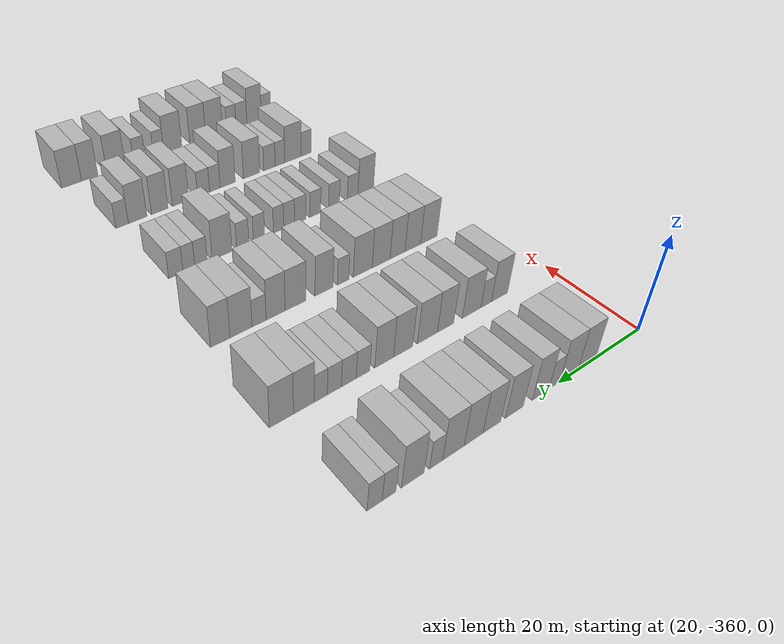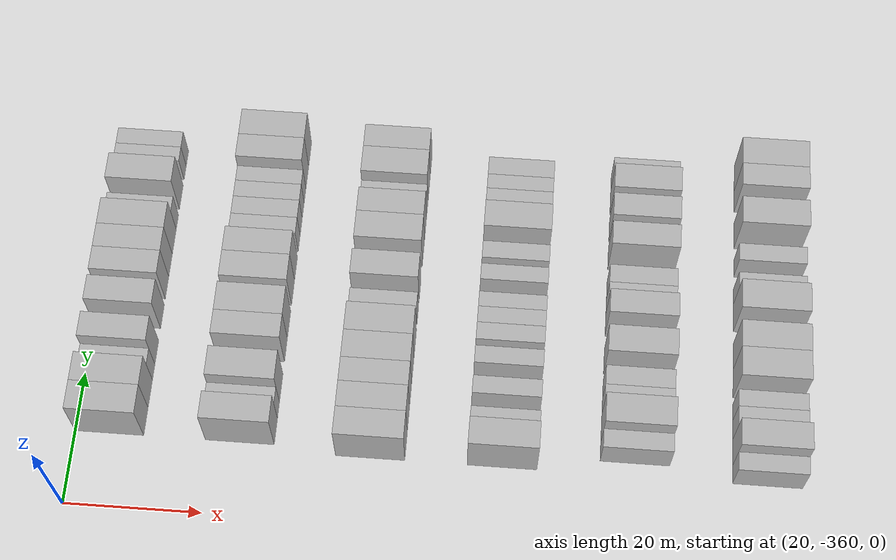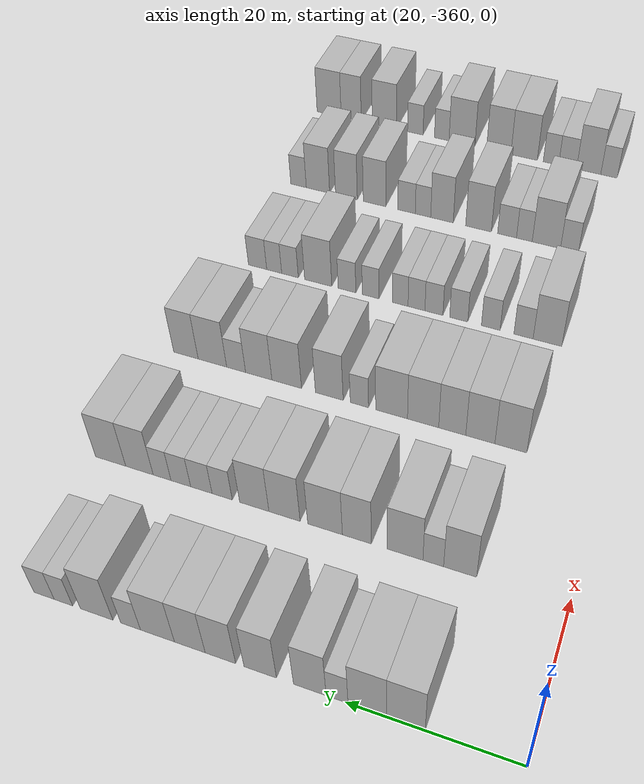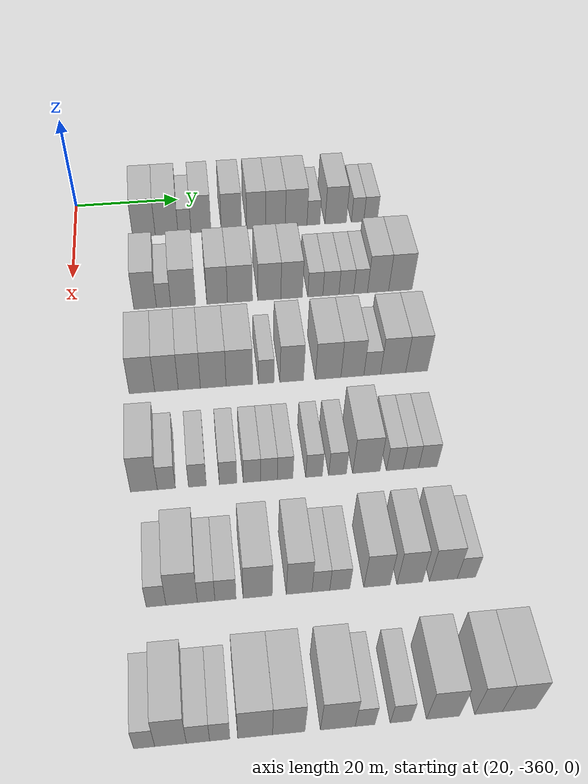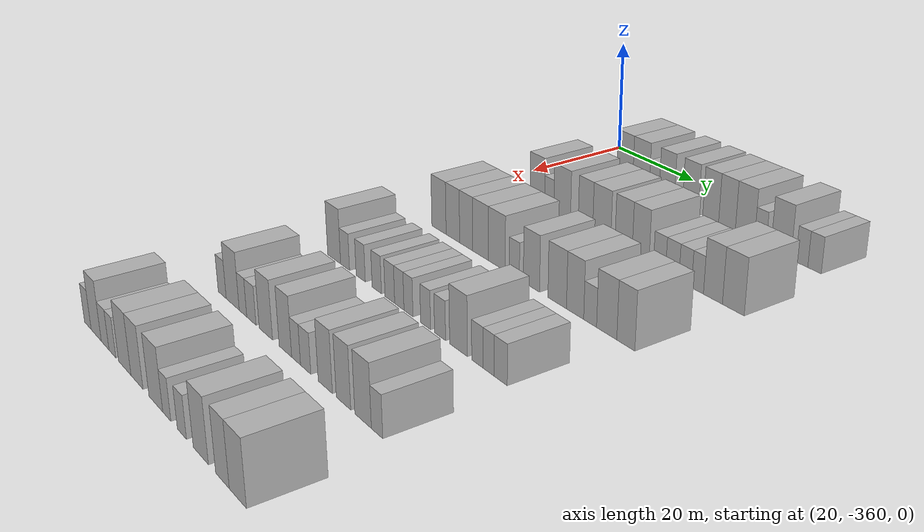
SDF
<sdf version="1.6">
 <world name="default">
  <model name="building_1">
   <static>1</static>
   <pose>25.0000 -346.8414 0 0.000000 0.000000 0.000000</pose>
   <link name="link">
    <pose>0 0 4.50 0 0 0</pose>
    <collision name="collision"><geometry><box><size>10.0000 4.3171 9.0000</size></box></geometry></collision>
    <visual name="visual">
     <cast_shadows>0</cast_shadows>
     <geometry><box><size>10.0000 4.3171 9.0000</size></box></geometry>
     <material>
      <script>
       <uri>model://HANNAS_wall/materials/scripts</uri>
       <uri>model://HANNAS_wall/materials/textures</uri>
       <name>vrc/HANNAS_wall</name>
      </script>
     </material>
    </visual>
   </link>
  </model>
  <model name="building_2">
   <static>1</static>
   <pose>25.0000 -342.5067 0 0.000000 0.000000 0.000000</pose>
   <link name="link">
    <pose>0 0 4.50 0 0 0</pose>
    <collision name="collision"><geometry><box><size>10.0000 4.3523 9.0000</size></box></geometry></collision>
    <visual name="visual">
     <cast_shadows>0</cast_shadows>
     <geometry><box><size>10.0000 4.3523 9.0000</size></box></geometry>
     <material>
      <script>
       <uri>model://HANNAS_wall/materials/scripts</uri>
       <uri>model://HANNAS_wall/materials/textures</uri>
       <name>vrc/HANNAS_wall</name>
      </script>
     </material>
    </visual>
   </link>
  </model>
  <model name="building_3">
   <static>1</static>
   <pose>25.0000 -339.0780 0 0.000000 0.000000 0.000000</pose>
   <link name="link">
    <pose>0 0 3.00 0 0 0</pose>
    <collision name="collision"><geometry><box><size>10.0000 2.5053 6.0000</size></box></geometry></collision>
    <visual name="visual">
     <cast_shadows>0</cast_shadows>
     <geometry><box><size>10.0000 2.5053 6.0000</size></box></geometry>
     <material>
      <script>
       <uri>model://HANNAS_wall/materials/scripts</uri>
       <uri>model://HANNAS_wall/materials/textures</uri>
       <name>vrc/HANNAS_wall</name>
      </script>
     </material>
    </visual>
   </link>
  </model>
  <model name="building_4">
   <static>1</static>
   <pose>25.0000 -335.9229 0 0.000000 0.000000 0.000000</pose>
   <link name="link">
    <pose>0 0 4.50 0 0 0</pose>
    <collision name="collision"><geometry><box><size>10.0000 3.8049 9.0000</size></box></geometry></collision>
    <visual name="visual">
     <cast_shadows>0</cast_shadows>
     <geometry><box><size>10.0000 3.8049 9.0000</size></box></geometry>
     <material>
      <script>
       <uri>model://HANNAS_wall/materials/scripts</uri>
       <uri>model://HANNAS_wall/materials/textures</uri>
       <name>vrc/HANNAS_wall</name>
      </script>
     </material>
    </visual>
   </link>
  </model>
  <model name="building_5">
   <static>1</static>
   <pose>25.0000 -330.0891 0 0.000000 0.000000 0.000000</pose>
   <link name="link">
    <pose>0 0 4.50 0 0 0</pose>
    <collision name="collision"><geometry><box><size>10.0000 3.8627 9.0000</size></box></geometry></collision>
    <visual name="visual">
     <cast_shadows>0</cast_shadows>
     <geometry><box><size>10.0000 3.8627 9.0000</size></box></geometry>
     <material>
      <script>
       <uri>model://HANNAS_wall/materials/scripts</uri>
       <uri>model://HANNAS_wall/materials/textures</uri>
       <name>vrc/HANNAS_wall</name>
      </script>
     </material>
    </visual>
   </link>
  </model>
  <model name="building_6">
   <static>1</static>
   <pose>25.0000 -325.3120 0 0.000000 0.000000 0.000000</pose>
   <link name="link">
    <pose>0 0 4.50 0 0 0</pose>
    <collision name="collision"><geometry><box><size>10.0000 3.6916 9.0000</size></box></geometry></collision>
    <visual name="visual">
     <cast_shadows>0</cast_shadows>
     <geometry><box><size>10.0000 3.6916 9.0000</size></box></geometry>
     <material>
      <script>
       <uri>model://HANNAS_wall/materials/scripts</uri>
       <uri>model://HANNAS_wall/materials/textures</uri>
       <name>vrc/HANNAS_wall</name>
      </script>
     </material>
    </visual>
   </link>
  </model>
  <model name="building_7">
   <static>1</static>
   <pose>25.0000 -321.5750 0 0.000000 0.000000 0.000000</pose>
   <link name="link">
    <pose>0 0 4.50 0 0 0</pose>
    <collision name="collision"><geometry><box><size>10.0000 3.7823 9.0000</size></box></geometry></collision>
    <visual name="visual">
     <cast_shadows>0</cast_shadows>
     <geometry><box><size>10.0000 3.7823 9.0000</size></box></geometry>
     <material>
      <script>
       <uri>model://HANNAS_wall/materials/scripts</uri>
       <uri>model://HANNAS_wall/materials/textures</uri>
       <name>vrc/HANNAS_wall</name>
      </script>
     </material>
    </visual>
   </link>
  </model>
  <model name="building_8">
   <static>1</static>
   <pose>25.0000 -317.5639 0 0.000000 0.000000 0.000000</pose>
   <link name="link">
    <pose>0 0 4.50 0 0 0</pose>
    <collision name="collision"><geometry><box><size>10.0000 4.2399 9.0000</size></box></geometry></collision>
    <visual name="visual">
     <cast_shadows>0</cast_shadows>
     <geometry><box><size>10.0000 4.2399 9.0000</size></box></geometry>
     <material>
      <script>
       <uri>model://HANNAS_wall/materials/scripts</uri>
       <uri>model://HANNAS_wall/materials/textures</uri>
       <name>vrc/HANNAS_wall</name>
      </script>
     </material>
    </visual>
   </link>
  </model>
  <model name="building_9">
   <static>1</static>
   <pose>25.0000 -314.1928 0 0.000000 0.000000 0.000000</pose>
   <link name="link">
    <pose>0 0 3.00 0 0 0</pose>
    <collision name="collision"><geometry><box><size>10.0000 2.5023 6.0000</size></box></geometry></collision>
    <visual name="visual">
     <cast_shadows>0</cast_shadows>
     <geometry><box><size>10.0000 2.5023 6.0000</size></box></geometry>
     <material>
      <script>
       <uri>model://HANNAS_wall/materials/scripts</uri>
       <uri>model://HANNAS_wall/materials/textures</uri>
       <name>vrc/HANNAS_wall</name>
      </script>
     </material>
    </visual>
   </link>
  </model>
  <model name="building_10">
   <static>1</static>
   <pose>25.0000 -309.8536 0 0.000000 0.000000 0.000000</pose>
   <link name="link">
    <pose>0 0 4.50 0 0 0</pose>
    <collision name="collision"><geometry><box><size>10.0000 4.1762 9.0000</size></box></geometry></collision>
    <visual name="visual">
     <cast_shadows>0</cast_shadows>
     <geometry><box><size>10.0000 4.1762 9.0000</size></box></geometry>
     <material>
      <script>
       <uri>model://HANNAS_wall/materials/scripts</uri>
       <uri>model://HANNAS_wall/materials/textures</uri>
       <name>vrc/HANNAS_wall</name>
      </script>
     </material>
    </visual>
   </link>
  </model>
  <model name="building_11">
   <static>1</static>
   <pose>25.0000 -305.5588 0 0.000000 0.000000 0.000000</pose>
   <link name="link">
    <pose>0 0 3.00 0 0 0</pose>
    <collision name="collision"><geometry><box><size>10.0000 2.4134 6.0000</size></box></geometry></collision>
    <visual name="visual">
     <cast_shadows>0</cast_shadows>
     <geometry><box><size>10.0000 2.4134 6.0000</size></box></geometry>
     <material>
      <script>
       <uri>model://HANNAS_wall/materials/scripts</uri>
       <uri>model://HANNAS_wall/materials/textures</uri>
       <name>vrc/HANNAS_wall</name>
      </script>
     </material>
    </visual>
   </link>
  </model>
  <model name="building_12">
   <static>1</static>
   <pose>25.0000 -303.0187 0 0.000000 0.000000 0.000000</pose>
   <link name="link">
    <pose>0 0 3.00 0 0 0</pose>
    <collision name="collision"><geometry><box><size>10.0000 2.6667 6.0000</size></box></geometry></collision>
    <visual name="visual">
     <cast_shadows>0</cast_shadows>
     <geometry><box><size>10.0000 2.6667 6.0000</size></box></geometry>
     <material>
      <script>
       <uri>model://HANNAS_wall/materials/scripts</uri>
       <uri>model://HANNAS_wall/materials/textures</uri>
       <name>vrc/HANNAS_wall</name>
      </script>
     </material>
    </visual>
   </link>
  </model>
  <model name="building_168">
   <static>1</static>
   <pose>44.0000 -346.9858 0 0.000000 0.000000 0.000000</pose>
   <link name="link">
    <pose>0 0 4.50 0 0 0</pose>
    <collision name="collision"><geometry><box><size>10.0000 4.0285 9.0000</size></box></geometry></collision>
    <visual name="visual">
     <cast_shadows>0</cast_shadows>
     <geometry><box><size>10.0000 4.0285 9.0000</size></box></geometry>
     <material>
      <script>
       <uri>model://HANNAS_wall/materials/scripts</uri>
       <uri>model://HANNAS_wall/materials/textures</uri>
       <name>vrc/HANNAS_wall</name>
      </script>
     </material>
    </visual>
   </link>
  </model>
  <model name="building_169">
   <static>1</static>
   <pose>44.0000 -343.7005 0 0.000000 0.000000 0.000000</pose>
   <link name="link">
    <pose>0 0 3.00 0 0 0</pose>
    <collision name="collision"><geometry><box><size>10.0000 2.5421 6.0000</size></box></geometry></collision>
    <visual name="visual">
     <cast_shadows>0</cast_shadows>
     <geometry><box><size>10.0000 2.5421 6.0000</size></box></geometry>
     <material>
      <script>
       <uri>model://HANNAS_wall/materials/scripts</uri>
       <uri>model://HANNAS_wall/materials/textures</uri>
       <name>vrc/HANNAS_wall</name>
      </script>
     </material>
    </visual>
   </link>
  </model>
  <model name="building_170">
   <static>1</static>
   <pose>44.0000 -340.2068 0 0.000000 0.000000 0.000000</pose>
   <link name="link">
    <pose>0 0 4.50 0 0 0</pose>
    <collision name="collision"><geometry><box><size>10.0000 4.4453 9.0000</size></box></geometry></collision>
    <visual name="visual">
     <cast_shadows>0</cast_shadows>
     <geometry><box><size>10.0000 4.4453 9.0000</size></box></geometry>
     <material>
      <script>
       <uri>model://HANNAS_wall/materials/scripts</uri>
       <uri>model://HANNAS_wall/materials/textures</uri>
       <name>vrc/HANNAS_wall</name>
      </script>
     </material>
    </visual>
   </link>
  </model>
  <model name="building_171">
   <static>1</static>
   <pose>44.0000 -334.1360 0 0.000000 0.000000 0.000000</pose>
   <link name="link">
    <pose>0 0 4.50 0 0 0</pose>
    <collision name="collision"><geometry><box><size>10.0000 3.6963 9.0000</size></box></geometry></collision>
    <visual name="visual">
     <cast_shadows>0</cast_shadows>
     <geometry><box><size>10.0000 3.6963 9.0000</size></box></geometry>
     <material>
      <script>
       <uri>model://HANNAS_wall/materials/scripts</uri>
       <uri>model://HANNAS_wall/materials/textures</uri>
       <name>vrc/HANNAS_wall</name>
      </script>
     </material>
    </visual>
   </link>
  </model>
  <model name="building_172">
   <static>1</static>
   <pose>44.0000 -330.0471 0 0.000000 0.000000 0.000000</pose>
   <link name="link">
    <pose>0 0 4.50 0 0 0</pose>
    <collision name="collision"><geometry><box><size>10.0000 4.4815 9.0000</size></box></geometry></collision>
    <visual name="visual">
     <cast_shadows>0</cast_shadows>
     <geometry><box><size>10.0000 4.4815 9.0000</size></box></geometry>
     <material>
      <script>
       <uri>model://HANNAS_wall/materials/scripts</uri>
       <uri>model://HANNAS_wall/materials/textures</uri>
       <name>vrc/HANNAS_wall</name>
      </script>
     </material>
    </visual>
   </link>
  </model>
  <model name="building_173">
   <static>1</static>
   <pose>44.0000 -324.7523 0 0.000000 0.000000 0.000000</pose>
   <link name="link">
    <pose>0 0 4.50 0 0 0</pose>
    <collision name="collision"><geometry><box><size>10.0000 4.1080 9.0000</size></box></geometry></collision>
    <visual name="visual">
     <cast_shadows>0</cast_shadows>
     <geometry><box><size>10.0000 4.1080 9.0000</size></box></geometry>
     <material>
      <script>
       <uri>model://HANNAS_wall/materials/scripts</uri>
       <uri>model://HANNAS_wall/materials/textures</uri>
       <name>vrc/HANNAS_wall</name>
      </script>
     </material>
    </visual>
   </link>
  </model>
  <model name="building_174">
   <static>1</static>
   <pose>44.0000 -320.7462 0 0.000000 0.000000 0.000000</pose>
   <link name="link">
    <pose>0 0 4.50 0 0 0</pose>
    <collision name="collision"><geometry><box><size>10.0000 3.9042 9.0000</size></box></geometry></collision>
    <visual name="visual">
     <cast_shadows>0</cast_shadows>
     <geometry><box><size>10.0000 3.9042 9.0000</size></box></geometry>
     <material>
      <script>
       <uri>model://HANNAS_wall/materials/scripts</uri>
       <uri>model://HANNAS_wall/materials/textures</uri>
       <name>vrc/HANNAS_wall</name>
      </script>
     </material>
    </visual>
   </link>
  </model>
  <model name="building_175">
   <static>1</static>
   <pose>44.0000 -316.4257 0 0.000000 0.000000 0.000000</pose>
   <link name="link">
    <pose>0 0 3.00 0 0 0</pose>
    <collision name="collision"><geometry><box><size>10.0000 2.7368 6.0000</size></box></geometry></collision>
    <visual name="visual">
     <cast_shadows>0</cast_shadows>
     <geometry><box><size>10.0000 2.7368 6.0000</size></box></geometry>
     <material>
      <script>
       <uri>model://HANNAS_wall/materials/scripts</uri>
       <uri>model://HANNAS_wall/materials/textures</uri>
       <name>vrc/HANNAS_wall</name>
      </script>
     </material>
    </visual>
   </link>
  </model>
  <model name="building_176">
   <static>1</static>
   <pose>44.0000 -313.5941 0 0.000000 0.000000 0.000000</pose>
   <link name="link">
    <pose>0 0 3.00 0 0 0</pose>
    <collision name="collision"><geometry><box><size>10.0000 2.9264 6.0000</size></box></geometry></collision>
    <visual name="visual">
     <cast_shadows>0</cast_shadows>
     <geometry><box><size>10.0000 2.9264 6.0000</size></box></geometry>
     <material>
      <script>
       <uri>model://HANNAS_wall/materials/scripts</uri>
       <uri>model://HANNAS_wall/materials/textures</uri>
       <name>vrc/HANNAS_wall</name>
      </script>
     </material>
    </visual>
   </link>
  </model>
  <model name="building_177">
   <static>1</static>
   <pose>44.0000 -310.7716 0 0.000000 0.000000 0.000000</pose>
   <link name="link">
    <pose>0 0 3.00 0 0 0</pose>
    <collision name="collision"><geometry><box><size>10.0000 2.7185 6.0000</size></box></geometry></collision>
    <visual name="visual">
     <cast_shadows>0</cast_shadows>
     <geometry><box><size>10.0000 2.7185 6.0000</size></box></geometry>
     <material>
      <script>
       <uri>model://HANNAS_wall/materials/scripts</uri>
       <uri>model://HANNAS_wall/materials/textures</uri>
       <name>vrc/HANNAS_wall</name>
      </script>
     </material>
    </visual>
   </link>
  </model>
  <model name="building_178">
   <static>1</static>
   <pose>44.0000 -308.1678 0 0.000000 0.000000 0.000000</pose>
   <link name="link">
    <pose>0 0 3.00 0 0 0</pose>
    <collision name="collision"><geometry><box><size>10.0000 2.4892 6.0000</size></box></geometry></collision>
    <visual name="visual">
     <cast_shadows>0</cast_shadows>
     <geometry><box><size>10.0000 2.4892 6.0000</size></box></geometry>
     <material>
      <script>
       <uri>model://HANNAS_wall/materials/scripts</uri>
       <uri>model://HANNAS_wall/materials/textures</uri>
       <name>vrc/HANNAS_wall</name>
      </script>
     </material>
    </visual>
   </link>
  </model>
  <model name="building_179">
   <static>1</static>
   <pose>44.0000 -304.9885 0 0.000000 0.000000 0.000000</pose>
   <link name="link">
    <pose>0 0 4.50 0 0 0</pose>
    <collision name="collision"><geometry><box><size>10.0000 3.8693 9.0000</size></box></geometry></collision>
    <visual name="visual">
     <cast_shadows>0</cast_shadows>
     <geometry><box><size>10.0000 3.8693 9.0000</size></box></geometry>
     <material>
      <script>
       <uri>model://HANNAS_wall/materials/scripts</uri>
       <uri>model://HANNAS_wall/materials/textures</uri>
       <name>vrc/HANNAS_wall</name>
      </script>
     </material>
    </visual>
   </link>
  </model>
  <model name="building_180">
   <static>1</static>
   <pose>44.0000 -300.8973 0 0.000000 0.000000 0.000000</pose>
   <link name="link">
    <pose>0 0 4.50 0 0 0</pose>
    <collision name="collision"><geometry><box><size>10.0000 4.3132 9.0000</size></box></geometry></collision>
    <visual name="visual">
     <cast_shadows>0</cast_shadows>
     <geometry><box><size>10.0000 4.3132 9.0000</size></box></geometry>
     <material>
      <script>
       <uri>model://HANNAS_wall/materials/scripts</uri>
       <uri>model://HANNAS_wall/materials/textures</uri>
       <name>vrc/HANNAS_wall</name>
      </script>
     </material>
    </visual>
   </link>
  </model>
  <model name="building_346">
   <static>1</static>
   <pose>63.0000 -347.8980 0 0.000000 0.000000 0.000000</pose>
   <link name="link">
    <pose>0 0 4.50 0 0 0</pose>
    <collision name="collision"><geometry><box><size>10.0000 4.2040 9.0000</size></box></geometry></collision>
    <visual name="visual">
     <cast_shadows>0</cast_shadows>
     <geometry><box><size>10.0000 4.2040 9.0000</size></box></geometry>
     <material>
      <script>
       <uri>model://HANNAS_wall/materials/scripts</uri>
       <uri>model://HANNAS_wall/materials/textures</uri>
       <name>vrc/HANNAS_wall</name>
      </script>
     </material>
    </visual>
   </link>
  </model>
  <model name="building_347">
   <static>1</static>
   <pose>63.0000 -343.8530 0 0.000000 0.000000 0.000000</pose>
   <link name="link">
    <pose>0 0 4.50 0 0 0</pose>
    <collision name="collision"><geometry><box><size>10.0000 3.8861 9.0000</size></box></geometry></collision>
    <visual name="visual">
     <cast_shadows>0</cast_shadows>
     <geometry><box><size>10.0000 3.8861 9.0000</size></box></geometry>
     <material>
      <script>
       <uri>model://HANNAS_wall/materials/scripts</uri>
       <uri>model://HANNAS_wall/materials/textures</uri>
       <name>vrc/HANNAS_wall</name>
      </script>
     </material>
    </visual>
   </link>
  </model>
  <model name="building_348">
   <static>1</static>
   <pose>63.0000 -340.0815 0 0.000000 0.000000 0.000000</pose>
   <link name="link">
    <pose>0 0 4.50 0 0 0</pose>
    <collision name="collision"><geometry><box><size>10.0000 3.6570 9.0000</size></box></geometry></collision>
    <visual name="visual">
     <cast_shadows>0</cast_shadows>
     <geometry><box><size>10.0000 3.6570 9.0000</size></box></geometry>
     <material>
      <script>
       <uri>model://HANNAS_wall/materials/scripts</uri>
       <uri>model://HANNAS_wall/materials/textures</uri>
       <name>vrc/HANNAS_wall</name>
      </script>
     </material>
    </visual>
   </link>
  </model>
  <model name="building_349">
   <static>1</static>
   <pose>63.0000 -336.1167 0 0.000000 0.000000 0.000000</pose>
   <link name="link">
    <pose>0 0 4.50 0 0 0</pose>
    <collision name="collision"><geometry><box><size>10.0000 4.2725 9.0000</size></box></geometry></collision>
    <visual name="visual">
     <cast_shadows>0</cast_shadows>
     <geometry><box><size>10.0000 4.2725 9.0000</size></box></geometry>
     <material>
      <script>
       <uri>model://HANNAS_wall/materials/scripts</uri>
       <uri>model://HANNAS_wall/materials/textures</uri>
       <name>vrc/HANNAS_wall</name>
      </script>
     </material>
    </visual>
   </link>
  </model>
  <model name="building_350">
   <static>1</static>
   <pose>63.0000 -331.7739 0 0.000000 0.000000 0.000000</pose>
   <link name="link">
    <pose>0 0 4.50 0 0 0</pose>
    <collision name="collision"><geometry><box><size>10.0000 4.4131 9.0000</size></box></geometry></collision>
    <visual name="visual">
     <cast_shadows>0</cast_shadows>
     <geometry><box><size>10.0000 4.4131 9.0000</size></box></geometry>
     <material>
      <script>
       <uri>model://HANNAS_wall/materials/scripts</uri>
       <uri>model://HANNAS_wall/materials/textures</uri>
       <name>vrc/HANNAS_wall</name>
      </script>
     </material>
    </visual>
   </link>
  </model>
  <model name="building_351">
   <static>1</static>
   <pose>63.0000 -327.2815 0 0.000000 0.000000 0.000000</pose>
   <link name="link">
    <pose>0 0 3.00 0 0 0</pose>
    <collision name="collision"><geometry><box><size>10.0000 2.5716 6.0000</size></box></geometry></collision>
    <visual name="visual">
     <cast_shadows>0</cast_shadows>
     <geometry><box><size>10.0000 2.5716 6.0000</size></box></geometry>
     <material>
      <script>
       <uri>model://HANNAS_wall/materials/scripts</uri>
       <uri>model://HANNAS_wall/materials/textures</uri>
       <name>vrc/HANNAS_wall</name>
      </script>
     </material>
    </visual>
   </link>
  </model>
  <model name="building_352">
   <static>1</static>
   <pose>63.0000 -323.0118 0 0.000000 0.000000 0.000000</pose>
   <link name="link">
    <pose>0 0 4.50 0 0 0</pose>
    <collision name="collision"><geometry><box><size>10.0000 3.9677 9.0000</size></box></geometry></collision>
    <visual name="visual">
     <cast_shadows>0</cast_shadows>
     <geometry><box><size>10.0000 3.9677 9.0000</size></box></geometry>
     <material>
      <script>
       <uri>model://HANNAS_wall/materials/scripts</uri>
       <uri>model://HANNAS_wall/materials/textures</uri>
       <name>vrc/HANNAS_wall</name>
      </script>
     </material>
    </visual>
   </link>
  </model>
  <model name="building_353">
   <static>1</static>
   <pose>63.0000 -316.8714 0 0.000000 0.000000 0.000000</pose>
   <link name="link">
    <pose>0 0 4.50 0 0 0</pose>
    <collision name="collision"><geometry><box><size>10.0000 4.3132 9.0000</size></box></geometry></collision>
    <visual name="visual">
     <cast_shadows>0</cast_shadows>
     <geometry><box><size>10.0000 4.3132 9.0000</size></box></geometry>
     <material>
      <script>
       <uri>model://HANNAS_wall/materials/scripts</uri>
       <uri>model://HANNAS_wall/materials/textures</uri>
       <name>vrc/HANNAS_wall</name>
      </script>
     </material>
    </visual>
   </link>
  </model>
  <model name="building_354">
   <static>1</static>
   <pose>63.0000 -312.7726 0 0.000000 0.000000 0.000000</pose>
   <link name="link">
    <pose>0 0 4.50 0 0 0</pose>
    <collision name="collision"><geometry><box><size>10.0000 3.8843 9.0000</size></box></geometry></collision>
    <visual name="visual">
     <cast_shadows>0</cast_shadows>
     <geometry><box><size>10.0000 3.8843 9.0000</size></box></geometry>
     <material>
      <script>
       <uri>model://HANNAS_wall/materials/scripts</uri>
       <uri>model://HANNAS_wall/materials/textures</uri>
       <name>vrc/HANNAS_wall</name>
      </script>
     </material>
    </visual>
   </link>
  </model>
  <model name="building_355">
   <static>1</static>
   <pose>63.0000 -309.4190 0 0.000000 0.000000 0.000000</pose>
   <link name="link">
    <pose>0 0 3.00 0 0 0</pose>
    <collision name="collision"><geometry><box><size>10.0000 2.8229 6.0000</size></box></geometry></collision>
    <visual name="visual">
     <cast_shadows>0</cast_shadows>
     <geometry><box><size>10.0000 2.8229 6.0000</size></box></geometry>
     <material>
      <script>
       <uri>model://HANNAS_wall/materials/scripts</uri>
       <uri>model://HANNAS_wall/materials/textures</uri>
       <name>vrc/HANNAS_wall</name>
      </script>
     </material>
    </visual>
   </link>
  </model>
  <model name="building_356">
   <static>1</static>
   <pose>63.0000 -305.8580 0 0.000000 0.000000 0.000000</pose>
   <link name="link">
    <pose>0 0 4.50 0 0 0</pose>
    <collision name="collision"><geometry><box><size>10.0000 4.2990 9.0000</size></box></geometry></collision>
    <visual name="visual">
     <cast_shadows>0</cast_shadows>
     <geometry><box><size>10.0000 4.2990 9.0000</size></box></geometry>
     <material>
      <script>
       <uri>model://HANNAS_wall/materials/scripts</uri>
       <uri>model://HANNAS_wall/materials/textures</uri>
       <name>vrc/HANNAS_wall</name>
      </script>
     </material>
    </visual>
   </link>
  </model>
  <model name="building_357">
   <static>1</static>
   <pose>63.0000 -301.8482 0 0.000000 0.000000 0.000000</pose>
   <link name="link">
    <pose>0 0 4.50 0 0 0</pose>
    <collision name="collision"><geometry><box><size>10.0000 3.7205 9.0000</size></box></geometry></collision>
    <visual name="visual">
     <cast_shadows>0</cast_shadows>
     <geometry><box><size>10.0000 3.7205 9.0000</size></box></geometry>
     <material>
      <script>
       <uri>model://HANNAS_wall/materials/scripts</uri>
       <uri>model://HANNAS_wall/materials/textures</uri>
       <name>vrc/HANNAS_wall</name>
      </script>
     </material>
    </visual>
   </link>
  </model>
  <model name="building_506">
   <static>1</static>
   <pose>82.0000 -347.9588 0 0.000000 0.000000 0.000000</pose>
   <link name="link">
    <pose>0 0 4.50 0 0 0</pose>
    <collision name="collision"><geometry><box><size>10.0000 4.0824 9.0000</size></box></geometry></collision>
    <visual name="visual">
     <cast_shadows>0</cast_shadows>
     <geometry><box><size>10.0000 4.0824 9.0000</size></box></geometry>
     <material>
      <script>
       <uri>model://HANNAS_wall/materials/scripts</uri>
       <uri>model://HANNAS_wall/materials/textures</uri>
       <name>vrc/HANNAS_wall</name>
      </script>
     </material>
    </visual>
   </link>
  </model>
  <model name="building_507">
   <static>1</static>
   <pose>82.0000 -344.5415 0 0.000000 0.000000 0.000000</pose>
   <link name="link">
    <pose>0 0 3.00 0 0 0</pose>
    <collision name="collision"><geometry><box><size>10.0000 2.7523 6.0000</size></box></geometry></collision>
    <visual name="visual">
     <cast_shadows>0</cast_shadows>
     <geometry><box><size>10.0000 2.7523 6.0000</size></box></geometry>
     <material>
      <script>
       <uri>model://HANNAS_wall/materials/scripts</uri>
       <uri>model://HANNAS_wall/materials/textures</uri>
       <name>vrc/HANNAS_wall</name>
      </script>
     </material>
    </visual>
   </link>
  </model>
  <model name="building_508">
   <static>1</static>
   <pose>82.0000 -339.8055 0 0.000000 0.000000 0.000000</pose>
   <link name="link">
    <pose>0 0 3.00 0 0 0</pose>
    <collision name="collision"><geometry><box><size>10.0000 2.7197 6.0000</size></box></geometry></collision>
    <visual name="visual">
     <cast_shadows>0</cast_shadows>
     <geometry><box><size>10.0000 2.7197 6.0000</size></box></geometry>
     <material>
      <script>
       <uri>model://HANNAS_wall/materials/scripts</uri>
       <uri>model://HANNAS_wall/materials/textures</uri>
       <name>vrc/HANNAS_wall</name>
      </script>
     </material>
    </visual>
   </link>
  </model>
  <model name="building_509">
   <static>1</static>
   <pose>82.0000 -335.1056 0 0.000000 0.000000 0.000000</pose>
   <link name="link">
    <pose>0 0 3.00 0 0 0</pose>
    <collision name="collision"><geometry><box><size>10.0000 2.6802 6.0000</size></box></geometry></collision>
    <visual name="visual">
     <cast_shadows>0</cast_shadows>
     <geometry><box><size>10.0000 2.6802 6.0000</size></box></geometry>
     <material>
      <script>
       <uri>model://HANNAS_wall/materials/scripts</uri>
       <uri>model://HANNAS_wall/materials/textures</uri>
       <name>vrc/HANNAS_wall</name>
      </script>
     </material>
    </visual>
   </link>
  </model>
  <model name="building_510">
   <static>1</static>
   <pose>82.0000 -331.4218 0 0.000000 0.000000 0.000000</pose>
   <link name="link">
    <pose>0 0 3.00 0 0 0</pose>
    <collision name="collision"><geometry><box><size>10.0000 2.6874 6.0000</size></box></geometry></collision>
    <visual name="visual">
     <cast_shadows>0</cast_shadows>
     <geometry><box><size>10.0000 2.6874 6.0000</size></box></geometry>
     <material>
      <script>
       <uri>model://HANNAS_wall/materials/scripts</uri>
       <uri>model://HANNAS_wall/materials/textures</uri>
       <name>vrc/HANNAS_wall</name>
      </script>
     </material>
    </visual>
   </link>
  </model>
  <model name="building_511">
   <static>1</static>
   <pose>82.0000 -328.8075 0 0.000000 0.000000 0.000000</pose>
   <link name="link">
    <pose>0 0 3.00 0 0 0</pose>
    <collision name="collision"><geometry><box><size>10.0000 2.5410 6.0000</size></box></geometry></collision>
    <visual name="visual">
     <cast_shadows>0</cast_shadows>
     <geometry><box><size>10.0000 2.5410 6.0000</size></box></geometry>
     <material>
      <script>
       <uri>model://HANNAS_wall/materials/scripts</uri>
       <uri>model://HANNAS_wall/materials/textures</uri>
       <name>vrc/HANNAS_wall</name>
      </script>
     </material>
    </visual>
   </link>
  </model>
  <model name="building_512">
   <static>1</static>
   <pose>82.0000 -326.3339 0 0.000000 0.000000 0.000000</pose>
   <link name="link">
    <pose>0 0 3.00 0 0 0</pose>
    <collision name="collision"><geometry><box><size>10.0000 2.4064 6.0000</size></box></geometry></collision>
    <visual name="visual">
     <cast_shadows>0</cast_shadows>
     <geometry><box><size>10.0000 2.4064 6.0000</size></box></geometry>
     <material>
      <script>
       <uri>model://HANNAS_wall/materials/scripts</uri>
       <uri>model://HANNAS_wall/materials/textures</uri>
       <name>vrc/HANNAS_wall</name>
      </script>
     </material>
    </visual>
   </link>
  </model>
  <model name="building_513">
   <static>1</static>
   <pose>82.0000 -321.8482 0 0.000000 0.000000 0.000000</pose>
   <link name="link">
    <pose>0 0 3.00 0 0 0</pose>
    <collision name="collision"><geometry><box><size>10.0000 2.5649 6.0000</size></box></geometry></collision>
    <visual name="visual">
     <cast_shadows>0</cast_shadows>
     <geometry><box><size>10.0000 2.5649 6.0000</size></box></geometry>
     <material>
      <script>
       <uri>model://HANNAS_wall/materials/scripts</uri>
       <uri>model://HANNAS_wall/materials/textures</uri>
       <name>vrc/HANNAS_wall</name>
      </script>
     </material>
    </visual>
   </link>
  </model>
  <model name="building_514">
   <static>1</static>
   <pose>82.0000 -318.1904 0 0.000000 0.000000 0.000000</pose>
   <link name="link">
    <pose>0 0 3.00 0 0 0</pose>
    <collision name="collision"><geometry><box><size>10.0000 2.7507 6.0000</size></box></geometry></collision>
    <visual name="visual">
     <cast_shadows>0</cast_shadows>
     <geometry><box><size>10.0000 2.7507 6.0000</size></box></geometry>
     <material>
      <script>
       <uri>model://HANNAS_wall/materials/scripts</uri>
       <uri>model://HANNAS_wall/materials/textures</uri>
       <name>vrc/HANNAS_wall</name>
      </script>
     </material>
    </visual>
   </link>
  </model>
  <model name="building_515">
   <static>1</static>
   <pose>82.0000 -313.6789 0 0.000000 0.000000 0.000000</pose>
   <link name="link">
    <pose>0 0 4.50 0 0 0</pose>
    <collision name="collision"><geometry><box><size>10.0000 4.2724 9.0000</size></box></geometry></collision>
    <visual name="visual">
     <cast_shadows>0</cast_shadows>
     <geometry><box><size>10.0000 4.2724 9.0000</size></box></geometry>
     <material>
      <script>
       <uri>model://HANNAS_wall/materials/scripts</uri>
       <uri>model://HANNAS_wall/materials/textures</uri>
       <name>vrc/HANNAS_wall</name>
      </script>
     </material>
    </visual>
   </link>
  </model>
  <model name="building_516">
   <static>1</static>
   <pose>82.0000 -309.2199 0 0.000000 0.000000 0.000000</pose>
   <link name="link">
    <pose>0 0 3.00 0 0 0</pose>
    <collision name="collision"><geometry><box><size>10.0000 2.6455 6.0000</size></box></geometry></collision>
    <visual name="visual">
     <cast_shadows>0</cast_shadows>
     <geometry><box><size>10.0000 2.6455 6.0000</size></box></geometry>
     <material>
      <script>
       <uri>model://HANNAS_wall/materials/scripts</uri>
       <uri>model://HANNAS_wall/materials/textures</uri>
       <name>vrc/HANNAS_wall</name>
      </script>
     </material>
    </visual>
   </link>
  </model>
  <model name="building_517">
   <static>1</static>
   <pose>82.0000 -306.6944 0 0.000000 0.000000 0.000000</pose>
   <link name="link">
    <pose>0 0 3.00 0 0 0</pose>
    <collision name="collision"><geometry><box><size>10.0000 2.4055 6.0000</size></box></geometry></collision>
    <visual name="visual">
     <cast_shadows>0</cast_shadows>
     <geometry><box><size>10.0000 2.4055 6.0000</size></box></geometry>
     <material>
      <script>
       <uri>model://HANNAS_wall/materials/scripts</uri>
       <uri>model://HANNAS_wall/materials/textures</uri>
       <name>vrc/HANNAS_wall</name>
      </script>
     </material>
    </visual>
   </link>
  </model>
  <model name="building_518">
   <static>1</static>
   <pose>82.0000 -304.0193 0 0.000000 0.000000 0.000000</pose>
   <link name="link">
    <pose>0 0 3.00 0 0 0</pose>
    <collision name="collision"><geometry><box><size>10.0000 2.9448 6.0000</size></box></geometry></collision>
    <visual name="visual">
     <cast_shadows>0</cast_shadows>
     <geometry><box><size>10.0000 2.9448 6.0000</size></box></geometry>
     <material>
      <script>
       <uri>model://HANNAS_wall/materials/scripts</uri>
       <uri>model://HANNAS_wall/materials/textures</uri>
       <name>vrc/HANNAS_wall</name>
      </script>
     </material>
    </visual>
   </link>
  </model>
  <model name="building_677">
   <static>1</static>
   <pose>101.0000 -346.6290 0 0.000000 0.000000 0.000000</pose>
   <link name="link">
    <pose>0 0 3.00 0 0 0</pose>
    <collision name="collision"><geometry><box><size>10.0000 2.7420 6.0000</size></box></geometry></collision>
    <visual name="visual">
     <cast_shadows>0</cast_shadows>
     <geometry><box><size>10.0000 2.7420 6.0000</size></box></geometry>
     <material>
      <script>
       <uri>model://HANNAS_wall/materials/scripts</uri>
       <uri>model://HANNAS_wall/materials/textures</uri>
       <name>vrc/HANNAS_wall</name>
      </script>
     </material>
    </visual>
   </link>
  </model>
  <model name="building_678">
   <static>1</static>
   <pose>101.0000 -343.0678 0 0.000000 0.000000 0.000000</pose>
   <link name="link">
    <pose>0 0 4.50 0 0 0</pose>
    <collision name="collision"><geometry><box><size>10.0000 4.3805 9.0000</size></box></geometry></collision>
    <visual name="visual">
     <cast_shadows>0</cast_shadows>
     <geometry><box><size>10.0000 4.3805 9.0000</size></box></geometry>
     <material>
      <script>
       <uri>model://HANNAS_wall/materials/scripts</uri>
       <uri>model://HANNAS_wall/materials/textures</uri>
       <name>vrc/HANNAS_wall</name>
      </script>
     </material>
    </visual>
   </link>
  </model>
  <model name="building_679">
   <static>1</static>
   <pose>101.0000 -339.6478 0 0.000000 0.000000 0.000000</pose>
   <link name="link">
    <pose>0 0 3.00 0 0 0</pose>
    <collision name="collision"><geometry><box><size>10.0000 2.4593 6.0000</size></box></geometry></collision>
    <visual name="visual">
     <cast_shadows>0</cast_shadows>
     <geometry><box><size>10.0000 2.4593 6.0000</size></box></geometry>
     <material>
      <script>
       <uri>model://HANNAS_wall/materials/scripts</uri>
       <uri>model://HANNAS_wall/materials/textures</uri>
       <name>vrc/HANNAS_wall</name>
      </script>
     </material>
    </visual>
   </link>
  </model>
  <model name="building_680">
   <static>1</static>
   <pose>101.0000 -336.9368 0 0.000000 0.000000 0.000000</pose>
   <link name="link">
    <pose>0 0 3.00 0 0 0</pose>
    <collision name="collision"><geometry><box><size>10.0000 2.9627 6.0000</size></box></geometry></collision>
    <visual name="visual">
     <cast_shadows>0</cast_shadows>
     <geometry><box><size>10.0000 2.9627 6.0000</size></box></geometry>
     <material>
      <script>
       <uri>model://HANNAS_wall/materials/scripts</uri>
       <uri>model://HANNAS_wall/materials/textures</uri>
       <name>vrc/HANNAS_wall</name>
      </script>
     </material>
    </visual>
   </link>
  </model>
  <model name="building_681">
   <static>1</static>
   <pose>101.0000 -332.4108 0 0.000000 0.000000 0.000000</pose>
   <link name="link">
    <pose>0 0 4.50 0 0 0</pose>
    <collision name="collision"><geometry><box><size>10.0000 4.0893 9.0000</size></box></geometry></collision>
    <visual name="visual">
     <cast_shadows>0</cast_shadows>
     <geometry><box><size>10.0000 4.0893 9.0000</size></box></geometry>
     <material>
      <script>
       <uri>model://HANNAS_wall/materials/scripts</uri>
       <uri>model://HANNAS_wall/materials/textures</uri>
       <name>vrc/HANNAS_wall</name>
      </script>
     </material>
    </visual>
   </link>
  </model>
  <model name="building_682">
   <static>1</static>
   <pose>101.0000 -326.5417 0 0.000000 0.000000 0.000000</pose>
   <link name="link">
    <pose>0 0 4.50 0 0 0</pose>
    <collision name="collision"><geometry><box><size>10.0000 3.6489 9.0000</size></box></geometry></collision>
    <visual name="visual">
     <cast_shadows>0</cast_shadows>
     <geometry><box><size>10.0000 3.6489 9.0000</size></box></geometry>
     <material>
      <script>
       <uri>model://HANNAS_wall/materials/scripts</uri>
       <uri>model://HANNAS_wall/materials/textures</uri>
       <name>vrc/HANNAS_wall</name>
      </script>
     </material>
    </visual>
   </link>
  </model>
  <model name="building_683">
   <static>1</static>
   <pose>101.0000 -323.4589 0 0.000000 0.000000 0.000000</pose>
   <link name="link">
    <pose>0 0 3.00 0 0 0</pose>
    <collision name="collision"><geometry><box><size>10.0000 2.5169 6.0000</size></box></geometry></collision>
    <visual name="visual">
     <cast_shadows>0</cast_shadows>
     <geometry><box><size>10.0000 2.5169 6.0000</size></box></geometry>
     <material>
      <script>
       <uri>model://HANNAS_wall/materials/scripts</uri>
       <uri>model://HANNAS_wall/materials/textures</uri>
       <name>vrc/HANNAS_wall</name>
      </script>
     </material>
    </visual>
   </link>
  </model>
  <model name="building_684">
   <static>1</static>
   <pose>101.0000 -320.7684 0 0.000000 0.000000 0.000000</pose>
   <link name="link">
    <pose>0 0 3.00 0 0 0</pose>
    <collision name="collision"><geometry><box><size>10.0000 2.8640 6.0000</size></box></geometry></collision>
    <visual name="visual">
     <cast_shadows>0</cast_shadows>
     <geometry><box><size>10.0000 2.8640 6.0000</size></box></geometry>
     <material>
      <script>
       <uri>model://HANNAS_wall/materials/scripts</uri>
       <uri>model://HANNAS_wall/materials/textures</uri>
       <name>vrc/HANNAS_wall</name>
      </script>
     </material>
    </visual>
   </link>
  </model>
  <model name="building_685">
   <static>1</static>
   <pose>101.0000 -315.4587 0 0.000000 0.000000 0.000000</pose>
   <link name="link">
    <pose>0 0 4.50 0 0 0</pose>
    <collision name="collision"><geometry><box><size>10.0000 3.7554 9.0000</size></box></geometry></collision>
    <visual name="visual">
     <cast_shadows>0</cast_shadows>
     <geometry><box><size>10.0000 3.7554 9.0000</size></box></geometry>
     <material>
      <script>
       <uri>model://HANNAS_wall/materials/scripts</uri>
       <uri>model://HANNAS_wall/materials/textures</uri>
       <name>vrc/HANNAS_wall</name>
      </script>
     </material>
    </visual>
   </link>
  </model>
  <model name="building_686">
   <static>1</static>
   <pose>101.0000 -310.7397 0 0.000000 0.000000 0.000000</pose>
   <link name="link">
    <pose>0 0 4.50 0 0 0</pose>
    <collision name="collision"><geometry><box><size>10.0000 3.6826 9.0000</size></box></geometry></collision>
    <visual name="visual">
     <cast_shadows>0</cast_shadows>
     <geometry><box><size>10.0000 3.6826 9.0000</size></box></geometry>
     <material>
      <script>
       <uri>model://HANNAS_wall/materials/scripts</uri>
       <uri>model://HANNAS_wall/materials/textures</uri>
       <name>vrc/HANNAS_wall</name>
      </script>
     </material>
    </visual>
   </link>
  </model>
  <model name="building_687">
   <static>1</static>
   <pose>101.0000 -305.8996 0 0.000000 0.000000 0.000000</pose>
   <link name="link">
    <pose>0 0 4.50 0 0 0</pose>
    <collision name="collision"><geometry><box><size>10.0000 3.9976 9.0000</size></box></geometry></collision>
    <visual name="visual">
     <cast_shadows>0</cast_shadows>
     <geometry><box><size>10.0000 3.9976 9.0000</size></box></geometry>
     <material>
      <script>
       <uri>model://HANNAS_wall/materials/scripts</uri>
       <uri>model://HANNAS_wall/materials/textures</uri>
       <name>vrc/HANNAS_wall</name>
      </script>
     </material>
    </visual>
   </link>
  </model>
  <model name="building_688">
   <static>1</static>
   <pose>101.0000 -302.5663 0 0.000000 0.000000 0.000000</pose>
   <link name="link">
    <pose>0 0 3.00 0 0 0</pose>
    <collision name="collision"><geometry><box><size>10.0000 2.6691 6.0000</size></box></geometry></collision>
    <visual name="visual">
     <cast_shadows>0</cast_shadows>
     <geometry><box><size>10.0000 2.6691 6.0000</size></box></geometry>
     <material>
      <script>
       <uri>model://HANNAS_wall/materials/scripts</uri>
       <uri>model://HANNAS_wall/materials/textures</uri>
       <name>vrc/HANNAS_wall</name>
      </script>
     </material>
    </visual>
   </link>
  </model>
  <model name="building_856">
   <static>1</static>
   <pose>120.0000 -348.6616 0 0.000000 0.000000 0.000000</pose>
   <link name="link">
    <pose>0 0 3.00 0 0 0</pose>
    <collision name="collision"><geometry><box><size>10.0000 2.6768 6.0000</size></box></geometry></collision>
    <visual name="visual">
     <cast_shadows>0</cast_shadows>
     <geometry><box><size>10.0000 2.6768 6.0000</size></box></geometry>
     <material>
      <script>
       <uri>model://HANNAS_wall/materials/scripts</uri>
       <uri>model://HANNAS_wall/materials/textures</uri>
       <name>vrc/HANNAS_wall</name>
      </script>
     </material>
    </visual>
   </link>
  </model>
  <model name="building_857">
   <static>1</static>
   <pose>120.0000 -345.3292 0 0.000000 0.000000 0.000000</pose>
   <link name="link">
    <pose>0 0 4.50 0 0 0</pose>
    <collision name="collision"><geometry><box><size>10.0000 3.9881 9.0000</size></box></geometry></collision>
    <visual name="visual">
     <cast_shadows>0</cast_shadows>
     <geometry><box><size>10.0000 3.9881 9.0000</size></box></geometry>
     <material>
      <script>
       <uri>model://HANNAS_wall/materials/scripts</uri>
       <uri>model://HANNAS_wall/materials/textures</uri>
       <name>vrc/HANNAS_wall</name>
      </script>
     </material>
    </visual>
   </link>
  </model>
  <model name="building_858">
   <static>1</static>
   <pose>120.0000 -341.8550 0 0.000000 0.000000 0.000000</pose>
   <link name="link">
    <pose>0 0 3.00 0 0 0</pose>
    <collision name="collision"><geometry><box><size>10.0000 2.9602 6.0000</size></box></geometry></collision>
    <visual name="visual">
     <cast_shadows>0</cast_shadows>
     <geometry><box><size>10.0000 2.9602 6.0000</size></box></geometry>
     <material>
      <script>
       <uri>model://HANNAS_wall/materials/scripts</uri>
       <uri>model://HANNAS_wall/materials/textures</uri>
       <name>vrc/HANNAS_wall</name>
      </script>
     </material>
    </visual>
   </link>
  </model>
  <model name="building_859">
   <static>1</static>
   <pose>120.0000 -339.0921 0 0.000000 0.000000 0.000000</pose>
   <link name="link">
    <pose>0 0 3.00 0 0 0</pose>
    <collision name="collision"><geometry><box><size>10.0000 2.5657 6.0000</size></box></geometry></collision>
    <visual name="visual">
     <cast_shadows>0</cast_shadows>
     <geometry><box><size>10.0000 2.5657 6.0000</size></box></geometry>
     <material>
      <script>
       <uri>model://HANNAS_wall/materials/scripts</uri>
       <uri>model://HANNAS_wall/materials/textures</uri>
       <name>vrc/HANNAS_wall</name>
      </script>
     </material>
    </visual>
   </link>
  </model>
  <model name="building_860">
   <static>1</static>
   <pose>120.0000 -334.5815 0 0.000000 0.000000 0.000000</pose>
   <link name="link">
    <pose>0 0 4.50 0 0 0</pose>
    <collision name="collision"><geometry><box><size>10.0000 4.4555 9.0000</size></box></geometry></collision>
    <visual name="visual">
     <cast_shadows>0</cast_shadows>
     <geometry><box><size>10.0000 4.4555 9.0000</size></box></geometry>
     <material>
      <script>
       <uri>model://HANNAS_wall/materials/scripts</uri>
       <uri>model://HANNAS_wall/materials/textures</uri>
       <name>vrc/HANNAS_wall</name>
      </script>
     </material>
    </visual>
   </link>
  </model>
  <model name="building_861">
   <static>1</static>
   <pose>120.0000 -330.2773 0 0.000000 0.000000 0.000000</pose>
   <link name="link">
    <pose>0 0 4.50 0 0 0</pose>
    <collision name="collision"><geometry><box><size>10.0000 4.1528 9.0000</size></box></geometry></collision>
    <visual name="visual">
     <cast_shadows>0</cast_shadows>
     <geometry><box><size>10.0000 4.1528 9.0000</size></box></geometry>
     <material>
      <script>
       <uri>model://HANNAS_wall/materials/scripts</uri>
       <uri>model://HANNAS_wall/materials/textures</uri>
       <name>vrc/HANNAS_wall</name>
      </script>
     </material>
    </visual>
   </link>
  </model>
  <model name="building_862">
   <static>1</static>
   <pose>120.0000 -323.9552 0 0.000000 0.000000 0.000000</pose>
   <link name="link">
    <pose>0 0 4.50 0 0 0</pose>
    <collision name="collision"><geometry><box><size>10.0000 4.4916 9.0000</size></box></geometry></collision>
    <visual name="visual">
     <cast_shadows>0</cast_shadows>
     <geometry><box><size>10.0000 4.4916 9.0000</size></box></geometry>
     <material>
      <script>
       <uri>model://HANNAS_wall/materials/scripts</uri>
       <uri>model://HANNAS_wall/materials/textures</uri>
       <name>vrc/HANNAS_wall</name>
      </script>
     </material>
    </visual>
   </link>
  </model>
  <model name="building_863">
   <static>1</static>
   <pose>120.0000 -320.4329 0 0.000000 0.000000 0.000000</pose>
   <link name="link">
    <pose>0 0 3.00 0 0 0</pose>
    <collision name="collision"><geometry><box><size>10.0000 2.5530 6.0000</size></box></geometry></collision>
    <visual name="visual">
     <cast_shadows>0</cast_shadows>
     <geometry><box><size>10.0000 2.5530 6.0000</size></box></geometry>
     <material>
      <script>
       <uri>model://HANNAS_wall/materials/scripts</uri>
       <uri>model://HANNAS_wall/materials/textures</uri>
       <name>vrc/HANNAS_wall</name>
      </script>
     </material>
    </visual>
   </link>
  </model>
  <model name="building_864">
   <static>1</static>
   <pose>120.0000 -315.7810 0 0.000000 0.000000 0.000000</pose>
   <link name="link">
    <pose>0 0 3.00 0 0 0</pose>
    <collision name="collision"><geometry><box><size>10.0000 2.7508 6.0000</size></box></geometry></collision>
    <visual name="visual">
     <cast_shadows>0</cast_shadows>
     <geometry><box><size>10.0000 2.7508 6.0000</size></box></geometry>
     <material>
      <script>
       <uri>model://HANNAS_wall/materials/scripts</uri>
       <uri>model://HANNAS_wall/materials/textures</uri>
       <name>vrc/HANNAS_wall</name>
      </script>
     </material>
    </visual>
   </link>
  </model>
  <model name="building_865">
   <static>1</static>
   <pose>120.0000 -310.2436 0 0.000000 0.000000 0.000000</pose>
   <link name="link">
    <pose>0 0 4.50 0 0 0</pose>
    <collision name="collision"><geometry><box><size>10.0000 4.3240 9.0000</size></box></geometry></collision>
    <visual name="visual">
     <cast_shadows>0</cast_shadows>
     <geometry><box><size>10.0000 4.3240 9.0000</size></box></geometry>
     <material>
      <script>
       <uri>model://HANNAS_wall/materials/scripts</uri>
       <uri>model://HANNAS_wall/materials/textures</uri>
       <name>vrc/HANNAS_wall</name>
      </script>
     </material>
    </visual>
   </link>
  </model>
  <model name="building_866">
   <static>1</static>
   <pose>120.0000 -304.2564 0 0.000000 0.000000 0.000000</pose>
   <link name="link">
    <pose>0 0 4.50 0 0 0</pose>
    <collision name="collision"><geometry><box><size>10.0000 3.6504 9.0000</size></box></geometry></collision>
    <visual name="visual">
     <cast_shadows>0</cast_shadows>
     <geometry><box><size>10.0000 3.6504 9.0000</size></box></geometry>
     <material>
      <script>
       <uri>model://HANNAS_wall/materials/scripts</uri>
       <uri>model://HANNAS_wall/materials/textures</uri>
       <name>vrc/HANNAS_wall</name>
      </script>
     </material>
    </visual>
   </link>
  </model>
  <model name="building_867">
   <static>1</static>
   <pose>120.0000 -300.2210 0 0.000000 0.000000 0.000000</pose>
   <link name="link">
    <pose>0 0 4.50 0 0 0</pose>
    <collision name="collision"><geometry><box><size>10.0000 4.4204 9.0000</size></box></geometry></collision>
    <visual name="visual">
     <cast_shadows>0</cast_shadows>
     <geometry><box><size>10.0000 4.4204 9.0000</size></box></geometry>
     <material>
      <script>
       <uri>model://HANNAS_wall/materials/scripts</uri>
       <uri>model://HANNAS_wall/materials/textures</uri>
       <name>vrc/HANNAS_wall</name>
      </script>
     </material>
    </visual>
   </link>
  </model>
 </world>
</sdf>
